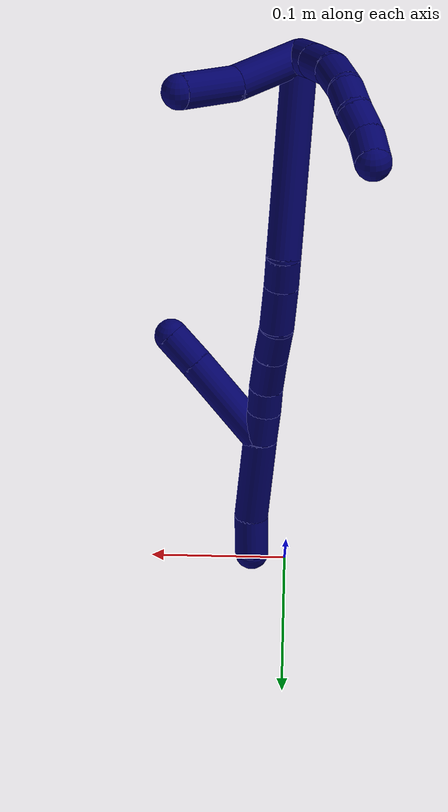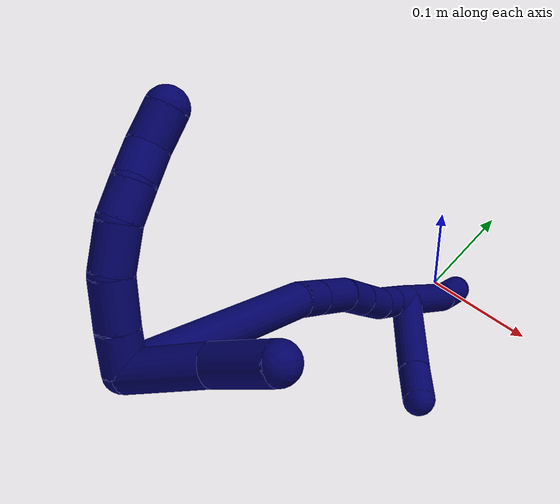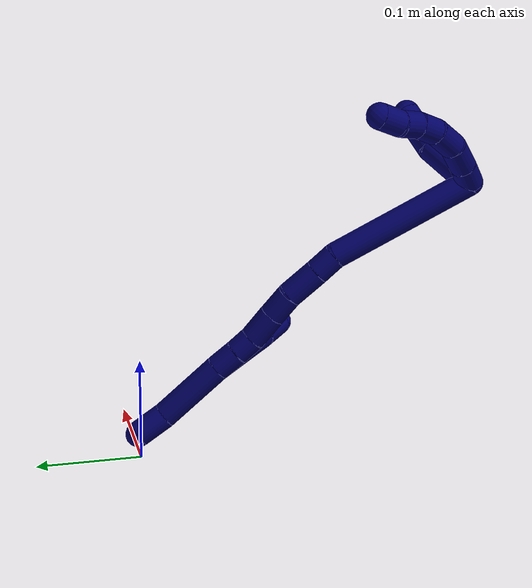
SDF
<sdf version="1.7">
 <world name="default">
  <model name="7">
   <static>0</static>
   <link name="7">
    <collision name="collision-cylinder-e_1_2_8">
     <pose>-0.003696 0.011699 0.003721 -1.26289 -0.292462 0.214598</pose>
     <geometry><cylinder><radius>0.0125</radius><length>0.025642</length></cylinder></geometry>
     <surface>
      <friction><ode><mu>1.16</mu><mu2>1.16</mu2><slip1>0</slip1><slip2>0</slip2></ode></friction>
      <contact><ode><kp>1e+06</kp><kd>1</kd><max_vel>0</max_vel><min_depth>0.001</min_depth></ode></contact>
     </surface>
    </collision>
    <visual name="visual-cylinder-e_1_2_8">
     <pose>-0.003696 0.011699 0.003721 -1.26289 -0.292462 0.214598</pose>
     <geometry><cylinder><radius>0.0125</radius><length>0.025642</length></cylinder></geometry>
     <material><ambient>0.003922 0 0.403922 1</ambient></material>
    </visual>
    <collision name="collision-cylinder-e_2_8_9">
     <pose>-0.01152 0.037367 0.011207 -1.30748 -0.277923 0.21349</pose>
     <geometry><cylinder><radius>0.0125</radius><length>0.030088</length></cylinder></geometry>
     <surface>
      <friction><ode><mu>1.16</mu><mu2>1.16</mu2><slip1>0</slip1><slip2>0</slip2></ode></friction>
      <contact><ode><kp>1e+06</kp><kd>1</kd><max_vel>0</max_vel><min_depth>0.001</min_depth></ode></contact>
     </surface>
    </collision>
    <visual name="visual-cylinder-e_2_8_9">
     <pose>-0.01152 0.037367 0.011207 -1.30748 -0.277923 0.21349</pose>
     <geometry><cylinder><radius>0.0125</radius><length>0.030088</length></cylinder></geometry>
     <material><ambient>0.003922 0 0.403922 1</ambient></material>
    </visual>
    <collision name="collision-cylinder-e_3_9_10">
     <pose>-0.018143 0.065117 0.014857 -1.57911 -0.179102 0.18059</pose>
     <geometry><cylinder><radius>0.0125</radius><length>0.028013</length></cylinder></geometry>
     <surface>
      <friction><ode><mu>1.16</mu><mu2>1.16</mu2><slip1>0</slip1><slip2>0</slip2></ode></friction>
      <contact><ode><kp>1e+06</kp><kd>1</kd><max_vel>0</max_vel><min_depth>0.001</min_depth></ode></contact>
     </surface>
    </collision>
    <visual name="visual-cylinder-e_3_9_10">
     <pose>-0.018143 0.065117 0.014857 -1.57911 -0.179102 0.18059</pose>
     <geometry><cylinder><radius>0.0125</radius><length>0.028013</length></cylinder></geometry>
     <material><ambient>0.003922 0 0.403922 1</ambient></material>
    </visual>
    <collision name="collision-cylinder-e_4_10_11">
     <pose>-0.022131 0.089299 0.011781 -1.84826 -0.137152 0.181454</pose>
     <geometry><cylinder><radius>0.0125</radius><length>0.021832</length></cylinder></geometry>
     <surface>
      <friction><ode><mu>1.16</mu><mu2>1.16</mu2><slip1>0</slip1><slip2>0</slip2></ode></friction>
      <contact><ode><kp>1e+06</kp><kd>1</kd><max_vel>0</max_vel><min_depth>0.001</min_depth></ode></contact>
     </surface>
    </collision>
    <visual name="visual-cylinder-e_4_10_11">
     <pose>-0.022131 0.089299 0.011781 -1.84826 -0.137152 0.181454</pose>
     <geometry><cylinder><radius>0.0125</radius><length>0.021832</length></cylinder></geometry>
     <material><ambient>0.003922 0 0.403922 1</ambient></material>
    </visual>
    <collision name="collision-cylinder-e_5_11_12">
     <pose>-0.026315 0.108654 0.004147 -2.05163 -0.260418 0.425481</pose>
     <geometry><cylinder><radius>0.0125</radius><length>0.020907</length></cylinder></geometry>
     <surface>
      <friction><ode><mu>1.16</mu><mu2>1.16</mu2><slip1>0</slip1><slip2>0</slip2></ode></friction>
      <contact><ode><kp>1e+06</kp><kd>1</kd><max_vel>0</max_vel><min_depth>0.001</min_depth></ode></contact>
     </surface>
    </collision>
    <visual name="visual-cylinder-e_5_11_12">
     <pose>-0.026315 0.108654 0.004147 -2.05163 -0.260418 0.425481</pose>
     <geometry><cylinder><radius>0.0125</radius><length>0.020907</length></cylinder></geometry>
     <material><ambient>0.003922 0 0.403922 1</ambient></material>
    </visual>
    <collision name="collision-cylinder-e_6_12_6">
     <pose>-0.029588 0.128794 -0.004109 -1.88095 -0.049473 0.067796</pose>
     <geometry><cylinder><radius>0.0125</radius><length>0.023517</length></cylinder></geometry>
     <surface>
      <friction><ode><mu>1.16</mu><mu2>1.16</mu2><slip1>0</slip1><slip2>0</slip2></ode></friction>
      <contact><ode><kp>1e+06</kp><kd>1</kd><max_vel>0</max_vel><min_depth>0.001</min_depth></ode></contact>
     </surface>
    </collision>
    <visual name="visual-cylinder-e_6_12_6">
     <pose>-0.029588 0.128794 -0.004109 -1.88095 -0.049473 0.067796</pose>
     <geometry><cylinder><radius>0.0125</radius><length>0.023517</length></cylinder></geometry>
     <material><ambient>0.003922 0 0.403922 1</ambient></material>
    </visual>
    <collision name="collision-cylinder-e_1_2_13">
     <pose>0.023896 0.013173 -0.001452 -1.68058 1.06442 -1.16307</pose>
     <geometry><cylinder><radius>0.0125</radius><length>0.054649</length></cylinder></geometry>
     <surface>
      <friction><ode><mu>1.16</mu><mu2>1.16</mu2><slip1>0</slip1><slip2>0</slip2></ode></friction>
      <contact><ode><kp>1e+06</kp><kd>1</kd><max_vel>0</max_vel><min_depth>0.001</min_depth></ode></contact>
     </surface>
    </collision>
    <visual name="visual-cylinder-e_1_2_13">
     <pose>0.023896 0.013173 -0.001452 -1.68058 1.06442 -1.16307</pose>
     <geometry><cylinder><radius>0.0125</radius><length>0.054649</length></cylinder></geometry>
     <material><ambient>0.003922 0 0.403922 1</ambient></material>
    </visual>
    <collision name="collision-cylinder-e_2_13_5">
     <pose>0.067477 0.036829 0.001188 -1.19861 1.05151 -0.754737</pose>
     <geometry><cylinder><radius>0.0125</radius><length>0.045351</length></cylinder></geometry>
     <surface>
      <friction><ode><mu>1.16</mu><mu2>1.16</mu2><slip1>0</slip1><slip2>0</slip2></ode></friction>
      <contact><ode><kp>1e+06</kp><kd>1</kd><max_vel>0</max_vel><min_depth>0.001</min_depth></ode></contact>
     </surface>
    </collision>
    <visual name="visual-cylinder-e_2_13_5">
     <pose>0.067477 0.036829 0.001188 -1.19861 1.05151 -0.754737</pose>
     <geometry><cylinder><radius>0.0125</radius><length>0.045351</length></cylinder></geometry>
     <material><ambient>0.003922 0 0.403922 1</ambient></material>
    </visual>
    <collision name="collision-cylinder-e_1_2_14">
     <pose>0.009702 0.02042 -0.067414 -2.84747 0.13688 -0.866817</pose>
     <geometry><cylinder><radius>0.0125</radius><length>0.142207</length></cylinder></geometry>
     <surface>
      <friction><ode><mu>1.16</mu><mu2>1.16</mu2><slip1>0</slip1><slip2>0</slip2></ode></friction>
      <contact><ode><kp>1e+06</kp><kd>1</kd><max_vel>0</max_vel><min_depth>0.001</min_depth></ode></contact>
     </surface>
    </collision>
    <visual name="visual-cylinder-e_1_2_14">
     <pose>0.009702 0.02042 -0.067414 -2.84747 0.13688 -0.866817</pose>
     <geometry><cylinder><radius>0.0125</radius><length>0.142207</length></cylinder></geometry>
     <material><ambient>0.003922 0 0.403922 1</ambient></material>
    </visual>
    <collision name="collision-cylinder-e_2_14_15">
     <pose>0.020508 0.041321 -0.146241 -3.09944 0.096322 -2.31695</pose>
     <geometry><cylinder><radius>0.0125</radius><length>0.022955</length></cylinder></geometry>
     <surface>
      <friction><ode><mu>1.16</mu><mu2>1.16</mu2><slip1>0</slip1><slip2>0</slip2></ode></friction>
      <contact><ode><kp>1e+06</kp><kd>1</kd><max_vel>0</max_vel><min_depth>0.001</min_depth></ode></contact>
     </surface>
    </collision>
    <visual name="visual-cylinder-e_2_14_15">
     <pose>0.020508 0.041321 -0.146241 -3.09944 0.096322 -2.31695</pose>
     <geometry><cylinder><radius>0.0125</radius><length>0.022955</length></cylinder></geometry>
     <material><ambient>0.003922 0 0.403922 1</ambient></material>
    </visual>
    <collision name="collision-cylinder-e_3_15_16">
     <pose>0.023801 0.042735 -0.174625 -3.0867 0.128091 -2.33264</pose>
     <geometry><cylinder><radius>0.0125</radius><length>0.034271</length></cylinder></geometry>
     <surface>
      <friction><ode><mu>1.16</mu><mu2>1.16</mu2><slip1>0</slip1><slip2>0</slip2></ode></friction>
      <contact><ode><kp>1e+06</kp><kd>1</kd><max_vel>0</max_vel><min_depth>0.001</min_depth></ode></contact>
     </surface>
    </collision>
    <visual name="visual-cylinder-e_3_15_16">
     <pose>0.023801 0.042735 -0.174625 -3.0867 0.128091 -2.33264</pose>
     <geometry><cylinder><radius>0.0125</radius><length>0.034271</length></cylinder></geometry>
     <material><ambient>0.003922 0 0.403922 1</ambient></material>
    </visual>
    <collision name="collision-cylinder-e_4_16_17">
     <pose>0.028043 0.04181 -0.204269 2.99605 0.158873 1.65864</pose>
     <geometry><cylinder><radius>0.0125</radius><length>0.025947</length></cylinder></geometry>
     <surface>
      <friction><ode><mu>1.16</mu><mu2>1.16</mu2><slip1>0</slip1><slip2>0</slip2></ode></friction>
      <contact><ode><kp>1e+06</kp><kd>1</kd><max_vel>0</max_vel><min_depth>0.001</min_depth></ode></contact>
     </surface>
    </collision>
    <visual name="visual-cylinder-e_4_16_17">
     <pose>0.028043 0.04181 -0.204269 2.99605 0.158873 1.65864</pose>
     <geometry><cylinder><radius>0.0125</radius><length>0.025947</length></cylinder></geometry>
     <material><ambient>0.003922 0 0.403922 1</ambient></material>
    </visual>
    <collision name="collision-cylinder-e_5_17_18">
     <pose>0.032051 0.037782 -0.231781 2.9964 0.129739 1.45812</pose>
     <geometry><cylinder><radius>0.0125</radius><length>0.030243</length></cylinder></geometry>
     <surface>
      <friction><ode><mu>1.16</mu><mu2>1.16</mu2><slip1>0</slip1><slip2>0</slip2></ode></friction>
      <contact><ode><kp>1e+06</kp><kd>1</kd><max_vel>0</max_vel><min_depth>0.001</min_depth></ode></contact>
     </surface>
    </collision>
    <visual name="visual-cylinder-e_5_17_18">
     <pose>0.032051 0.037782 -0.231781 2.9964 0.129739 1.45812</pose>
     <geometry><cylinder><radius>0.0125</radius><length>0.030243</length></cylinder></geometry>
     <material><ambient>0.003922 0 0.403922 1</ambient></material>
    </visual>
    <collision name="collision-cylinder-e_6_18_19">
     <pose>0.035078 0.036029 -0.256689 -3.1003 0.10578 -2.39784</pose>
     <geometry><cylinder><radius>0.0125</radius><length>0.020273</length></cylinder></geometry>
     <surface>
      <friction><ode><mu>1.16</mu><mu2>1.16</mu2><slip1>0</slip1><slip2>0</slip2></ode></friction>
      <contact><ode><kp>1e+06</kp><kd>1</kd><max_vel>0</max_vel><min_depth>0.001</min_depth></ode></contact>
     </surface>
    </collision>
    <visual name="visual-cylinder-e_6_18_19">
     <pose>0.035078 0.036029 -0.256689 -3.1003 0.10578 -2.39784</pose>
     <geometry><cylinder><radius>0.0125</radius><length>0.020273</length></cylinder></geometry>
     <material><ambient>0.003922 0 0.403922 1</ambient></material>
    </visual>
    <collision name="collision-cylinder-e_7_19_1">
     <pose>0.037996 0.037135 -0.278649 -3.08358 0.153957 -2.42202</pose>
     <geometry><cylinder><radius>0.0125</radius><length>0.024104</length></cylinder></geometry>
     <surface>
      <friction><ode><mu>1.16</mu><mu2>1.16</mu2><slip1>0</slip1><slip2>0</slip2></ode></friction>
      <contact><ode><kp>1e+06</kp><kd>1</kd><max_vel>0</max_vel><min_depth>0.001</min_depth></ode></contact>
     </surface>
    </collision>
    <visual name="visual-cylinder-e_7_19_1">
     <pose>0.037996 0.037135 -0.278649 -3.08358 0.153957 -2.42202</pose>
     <geometry><cylinder><radius>0.0125</radius><length>0.024104</length></cylinder></geometry>
     <material><ambient>0.003922 0 0.403922 1</ambient></material>
    </visual>
    <collision name="collision-cylinder-e_1_1_20">
     <pose>0.044286 0.038527 -0.324862 -3.12117 0.128666 -2.82723</pose>
     <geometry><cylinder><radius>0.0125</radius><length>0.069234</length></cylinder></geometry>
     <surface>
      <friction><ode><mu>1.16</mu><mu2>1.16</mu2><slip1>0</slip1><slip2>0</slip2></ode></friction>
      <contact><ode><kp>1e+06</kp><kd>1</kd><max_vel>0</max_vel><min_depth>0.001</min_depth></ode></contact>
     </surface>
    </collision>
    <visual name="visual-cylinder-e_1_1_20">
     <pose>0.044286 0.038527 -0.324862 -3.12117 0.128666 -2.82723</pose>
     <geometry><cylinder><radius>0.0125</radius><length>0.069234</length></cylinder></geometry>
     <material><ambient>0.003922 0 0.403922 1</ambient></material>
    </visual>
    <collision name="collision-cylinder-e_2_20_4">
     <pose>0.049296 0.042334 -0.374242 -2.93815 0.036949 -0.358142</pose>
     <geometry><cylinder><radius>0.0125</radius><length>0.030766</length></cylinder></geometry>
     <surface>
      <friction><ode><mu>1.16</mu><mu2>1.16</mu2><slip1>0</slip1><slip2>0</slip2></ode></friction>
      <contact><ode><kp>1e+06</kp><kd>1</kd><max_vel>0</max_vel><min_depth>0.001</min_depth></ode></contact>
     </surface>
    </collision>
    <visual name="visual-cylinder-e_2_20_4">
     <pose>0.049296 0.042334 -0.374242 -2.93815 0.036949 -0.358142</pose>
     <geometry><cylinder><radius>0.0125</radius><length>0.030766</length></cylinder></geometry>
     <material><ambient>0.003922 0 0.403922 1</ambient></material>
    </visual>
    <collision name="collision-cylinder-e_1_1_21">
     <pose>0.060653 0.01857 -0.268141 0.71011 0.613745 0.233907</pose>
     <geometry><cylinder><radius>0.0125</radius><length>0.072261</length></cylinder></geometry>
     <surface>
      <friction><ode><mu>1.16</mu><mu2>1.16</mu2><slip1>0</slip1><slip2>0</slip2></ode></friction>
      <contact><ode><kp>1e+06</kp><kd>1</kd><max_vel>0</max_vel><min_depth>0.001</min_depth></ode></contact>
     </surface>
    </collision>
    <visual name="visual-cylinder-e_1_1_21">
     <pose>0.060653 0.01857 -0.268141 0.71011 0.613745 0.233907</pose>
     <geometry><cylinder><radius>0.0125</radius><length>0.072261</length></cylinder></geometry>
     <material><ambient>0.003922 0 0.403922 1</ambient></material>
    </visual>
    <collision name="collision-cylinder-e_2_21_3">
     <pose>0.089788 -0.007517 -0.237005 0.663566 0.643867 0.228815</pose>
     <geometry><cylinder><radius>0.0125</radius><length>0.027739</length></cylinder></geometry>
     <surface>
      <friction><ode><mu>1.16</mu><mu2>1.16</mu2><slip1>0</slip1><slip2>0</slip2></ode></friction>
      <contact><ode><kp>1e+06</kp><kd>1</kd><max_vel>0</max_vel><min_depth>0.001</min_depth></ode></contact>
     </surface>
    </collision>
    <visual name="visual-cylinder-e_2_21_3">
     <pose>0.089788 -0.007517 -0.237005 0.663566 0.643867 0.228815</pose>
     <geometry><cylinder><radius>0.0125</radius><length>0.027739</length></cylinder></geometry>
     <material><ambient>0.003922 0 0.403922 1</ambient></material>
    </visual>
    <collision name="collision-sphere-3">
     <pose>0.098113 -0.014349 -0.228267 0 -0 0</pose>
     <geometry><sphere><radius>0.0125</radius></sphere></geometry>
     <surface>
      <friction><ode><mu>1.16</mu><mu2>1.16</mu2><slip1>0</slip1><slip2>0</slip2></ode></friction>
      <contact><ode><kp>1e+06</kp><kd>1</kd><max_vel>0</max_vel><min_depth>0.001</min_depth></ode></contact>
     </surface>
    </collision>
    <visual name="visual-sphere-3">
     <pose>0.098113 -0.014349 -0.228267 0 -0 0</pose>
     <geometry><sphere><radius>0.0125</radius></sphere></geometry>
     <material><ambient>0.003922 0 0.403922 1</ambient></material>
    </visual>
    <collision name="collision-sphere-21">
     <pose>0.081462 -0.000685 -0.245744 0 -0 0</pose>
     <geometry><sphere><radius>0.0125</radius></sphere></geometry>
     <surface>
      <friction><ode><mu>1.16</mu><mu2>1.16</mu2><slip1>0</slip1><slip2>0</slip2></ode></friction>
      <contact><ode><kp>1e+06</kp><kd>1</kd><max_vel>0</max_vel><min_depth>0.001</min_depth></ode></contact>
     </surface>
    </collision>
    <visual name="visual-sphere-21">
     <pose>0.081462 -0.000685 -0.245744 0 -0 0</pose>
     <geometry><sphere><radius>0.0125</radius></sphere></geometry>
     <material><ambient>0.003922 0 0.403922 1</ambient></material>
    </visual>
    <collision name="collision-sphere-4">
     <pose>0.049865 0.04544 -0.389297 0 -0 0</pose>
     <geometry><sphere><radius>0.0125</radius></sphere></geometry>
     <surface>
      <friction><ode><mu>1.16</mu><mu2>1.16</mu2><slip1>0</slip1><slip2>0</slip2></ode></friction>
      <contact><ode><kp>1e+06</kp><kd>1</kd><max_vel>0</max_vel><min_depth>0.001</min_depth></ode></contact>
     </surface>
    </collision>
    <visual name="visual-sphere-4">
     <pose>0.049865 0.04544 -0.389297 0 -0 0</pose>
     <geometry><sphere><radius>0.0125</radius></sphere></geometry>
     <material><ambient>0.003922 0 0.403922 1</ambient></material>
    </visual>
    <collision name="collision-sphere-20">
     <pose>0.048728 0.039228 -0.359186 0 -0 0</pose>
     <geometry><sphere><radius>0.0125</radius></sphere></geometry>
     <surface>
      <friction><ode><mu>1.16</mu><mu2>1.16</mu2><slip1>0</slip1><slip2>0</slip2></ode></friction>
      <contact><ode><kp>1e+06</kp><kd>1</kd><max_vel>0</max_vel><min_depth>0.001</min_depth></ode></contact>
     </surface>
    </collision>
    <visual name="visual-sphere-20">
     <pose>0.048728 0.039228 -0.359186 0 -0 0</pose>
     <geometry><sphere><radius>0.0125</radius></sphere></geometry>
     <material><ambient>0.003922 0 0.403922 1</ambient></material>
    </visual>
    <collision name="collision-sphere-12">
     <pose>-0.029007 0.11761 -0.000525 0 -0 0</pose>
     <geometry><sphere><radius>0.0125</radius></sphere></geometry>
     <surface>
      <friction><ode><mu>1.16</mu><mu2>1.16</mu2><slip1>0</slip1><slip2>0</slip2></ode></friction>
      <contact><ode><kp>1e+06</kp><kd>1</kd><max_vel>0</max_vel><min_depth>0.001</min_depth></ode></contact>
     </surface>
    </collision>
    <visual name="visual-sphere-12">
     <pose>-0.029007 0.11761 -0.000525 0 -0 0</pose>
     <geometry><sphere><radius>0.0125</radius></sphere></geometry>
     <material><ambient>0.003922 0 0.403922 1</ambient></material>
    </visual>
    <collision name="collision-sphere-11">
     <pose>-0.023623 0.099699 0.008819 0 -0 0</pose>
     <geometry><sphere><radius>0.0125</radius></sphere></geometry>
     <surface>
      <friction><ode><mu>1.16</mu><mu2>1.16</mu2><slip1>0</slip1><slip2>0</slip2></ode></friction>
      <contact><ode><kp>1e+06</kp><kd>1</kd><max_vel>0</max_vel><min_depth>0.001</min_depth></ode></contact>
     </surface>
    </collision>
    <visual name="visual-sphere-11">
     <pose>-0.023623 0.099699 0.008819 0 -0 0</pose>
     <geometry><sphere><radius>0.0125</radius></sphere></geometry>
     <material><ambient>0.003922 0 0.403922 1</ambient></material>
    </visual>
    <collision name="collision-sphere-10">
     <pose>-0.020638 0.078899 0.014743 0 -0 0</pose>
     <geometry><sphere><radius>0.0125</radius></sphere></geometry>
     <surface>
      <friction><ode><mu>1.16</mu><mu2>1.16</mu2><slip1>0</slip1><slip2>0</slip2></ode></friction>
      <contact><ode><kp>1e+06</kp><kd>1</kd><max_vel>0</max_vel><min_depth>0.001</min_depth></ode></contact>
     </surface>
    </collision>
    <visual name="visual-sphere-10">
     <pose>-0.020638 0.078899 0.014743 0 -0 0</pose>
     <geometry><sphere><radius>0.0125</radius></sphere></geometry>
     <material><ambient>0.003922 0 0.403922 1</ambient></material>
    </visual>
    <collision name="collision-sphere-9">
     <pose>-0.015648 0.051335 0.014972 0 -0 0</pose>
     <geometry><sphere><radius>0.0125</radius></sphere></geometry>
     <surface>
      <friction><ode><mu>1.16</mu><mu2>1.16</mu2><slip1>0</slip1><slip2>0</slip2></ode></friction>
      <contact><ode><kp>1e+06</kp><kd>1</kd><max_vel>0</max_vel><min_depth>0.001</min_depth></ode></contact>
     </surface>
    </collision>
    <visual name="visual-sphere-9">
     <pose>-0.015648 0.051335 0.014972 0 -0 0</pose>
     <geometry><sphere><radius>0.0125</radius></sphere></geometry>
     <material><ambient>0.003922 0 0.403922 1</ambient></material>
    </visual>
    <collision name="collision-sphere-2">
     <geometry><sphere><radius>0.0125</radius></sphere></geometry>
     <surface>
      <friction><ode><mu>1.16</mu><mu2>1.16</mu2><slip1>0</slip1><slip2>0</slip2></ode></friction>
      <contact><ode><kp>1e+06</kp><kd>1</kd><max_vel>0</max_vel><min_depth>0.001</min_depth></ode></contact>
     </surface>
    </collision>
    <visual name="visual-sphere-2">
     <geometry><sphere><radius>0.0125</radius></sphere></geometry>
     <material><ambient>0.003922 0 0.403922 1</ambient></material>
    </visual>
    <collision name="collision-sphere-19">
     <pose>0.036148 0.036445 -0.26676 0 -0 0</pose>
     <geometry><sphere><radius>0.0125</radius></sphere></geometry>
     <surface>
      <friction><ode><mu>1.16</mu><mu2>1.16</mu2><slip1>0</slip1><slip2>0</slip2></ode></friction>
      <contact><ode><kp>1e+06</kp><kd>1</kd><max_vel>0</max_vel><min_depth>0.001</min_depth></ode></contact>
     </surface>
    </collision>
    <visual name="visual-sphere-19">
     <pose>0.036148 0.036445 -0.26676 0 -0 0</pose>
     <geometry><sphere><radius>0.0125</radius></sphere></geometry>
     <material><ambient>0.003922 0 0.403922 1</ambient></material>
    </visual>
    <collision name="collision-sphere-8">
     <pose>-0.007393 0.023398 0.007441 0 -0 0</pose>
     <geometry><sphere><radius>0.0125</radius></sphere></geometry>
     <surface>
      <friction><ode><mu>1.16</mu><mu2>1.16</mu2><slip1>0</slip1><slip2>0</slip2></ode></friction>
      <contact><ode><kp>1e+06</kp><kd>1</kd><max_vel>0</max_vel><min_depth>0.001</min_depth></ode></contact>
     </surface>
    </collision>
    <visual name="visual-sphere-8">
     <pose>-0.007393 0.023398 0.007441 0 -0 0</pose>
     <geometry><sphere><radius>0.0125</radius></sphere></geometry>
     <material><ambient>0.003922 0 0.403922 1</ambient></material>
    </visual>
    <collision name="collision-sphere-6">
     <pose>-0.03017 0.139978 -0.007694 0 -0 0</pose>
     <geometry><sphere><radius>0.0125</radius></sphere></geometry>
     <surface>
      <friction><ode><mu>1.16</mu><mu2>1.16</mu2><slip1>0</slip1><slip2>0</slip2></ode></friction>
      <contact><ode><kp>1e+06</kp><kd>1</kd><max_vel>0</max_vel><min_depth>0.001</min_depth></ode></contact>
     </surface>
    </collision>
    <visual name="visual-sphere-6">
     <pose>-0.03017 0.139978 -0.007694 0 -0 0</pose>
     <geometry><sphere><radius>0.0125</radius></sphere></geometry>
     <material><ambient>0.003922 0 0.403922 1</ambient></material>
    </visual>
    <collision name="collision-sphere-13">
     <pose>0.047791 0.026346 -0.002904 0 -0 0</pose>
     <geometry><sphere><radius>0.0125</radius></sphere></geometry>
     <surface>
      <friction><ode><mu>1.16</mu><mu2>1.16</mu2><slip1>0</slip1><slip2>0</slip2></ode></friction>
      <contact><ode><kp>1e+06</kp><kd>1</kd><max_vel>0</max_vel><min_depth>0.001</min_depth></ode></contact>
     </surface>
    </collision>
    <visual name="visual-sphere-13">
     <pose>0.047791 0.026346 -0.002904 0 -0 0</pose>
     <geometry><sphere><radius>0.0125</radius></sphere></geometry>
     <material><ambient>0.003922 0 0.403922 1</ambient></material>
    </visual>
    <collision name="collision-sphere-5">
     <pose>0.087163 0.047311 0.00528 0 -0 0</pose>
     <geometry><sphere><radius>0.0125</radius></sphere></geometry>
     <surface>
      <friction><ode><mu>1.16</mu><mu2>1.16</mu2><slip1>0</slip1><slip2>0</slip2></ode></friction>
      <contact><ode><kp>1e+06</kp><kd>1</kd><max_vel>0</max_vel><min_depth>0.001</min_depth></ode></contact>
     </surface>
    </collision>
    <visual name="visual-sphere-5">
     <pose>0.087163 0.047311 0.00528 0 -0 0</pose>
     <geometry><sphere><radius>0.0125</radius></sphere></geometry>
     <material><ambient>0.003922 0 0.403922 1</ambient></material>
    </visual>
    <collision name="collision-sphere-14">
     <pose>0.019405 0.04084 -0.134827 0 -0 0</pose>
     <geometry><sphere><radius>0.0125</radius></sphere></geometry>
     <surface>
      <friction><ode><mu>1.16</mu><mu2>1.16</mu2><slip1>0</slip1><slip2>0</slip2></ode></friction>
      <contact><ode><kp>1e+06</kp><kd>1</kd><max_vel>0</max_vel><min_depth>0.001</min_depth></ode></contact>
     </surface>
    </collision>
    <visual name="visual-sphere-14">
     <pose>0.019405 0.04084 -0.134827 0 -0 0</pose>
     <geometry><sphere><radius>0.0125</radius></sphere></geometry>
     <material><ambient>0.003922 0 0.403922 1</ambient></material>
    </visual>
    <collision name="collision-sphere-15">
     <pose>0.021612 0.041803 -0.157655 0 -0 0</pose>
     <geometry><sphere><radius>0.0125</radius></sphere></geometry>
     <surface>
      <friction><ode><mu>1.16</mu><mu2>1.16</mu2><slip1>0</slip1><slip2>0</slip2></ode></friction>
      <contact><ode><kp>1e+06</kp><kd>1</kd><max_vel>0</max_vel><min_depth>0.001</min_depth></ode></contact>
     </surface>
    </collision>
    <visual name="visual-sphere-15">
     <pose>0.021612 0.041803 -0.157655 0 -0 0</pose>
     <geometry><sphere><radius>0.0125</radius></sphere></geometry>
     <material><ambient>0.003922 0 0.403922 1</ambient></material>
    </visual>
    <collision name="collision-sphere-16">
     <pose>0.02599 0.043668 -0.191595 0 -0 0</pose>
     <geometry><sphere><radius>0.0125</radius></sphere></geometry>
     <surface>
      <friction><ode><mu>1.16</mu><mu2>1.16</mu2><slip1>0</slip1><slip2>0</slip2></ode></friction>
      <contact><ode><kp>1e+06</kp><kd>1</kd><max_vel>0</max_vel><min_depth>0.001</min_depth></ode></contact>
     </surface>
    </collision>
    <visual name="visual-sphere-16">
     <pose>0.02599 0.043668 -0.191595 0 -0 0</pose>
     <geometry><sphere><radius>0.0125</radius></sphere></geometry>
     <material><ambient>0.003922 0 0.403922 1</ambient></material>
    </visual>
    <collision name="collision-sphere-17">
     <pose>0.030095 0.039952 -0.216944 0 -0 0</pose>
     <geometry><sphere><radius>0.0125</radius></sphere></geometry>
     <surface>
      <friction><ode><mu>1.16</mu><mu2>1.16</mu2><slip1>0</slip1><slip2>0</slip2></ode></friction>
      <contact><ode><kp>1e+06</kp><kd>1</kd><max_vel>0</max_vel><min_depth>0.001</min_depth></ode></contact>
     </surface>
    </collision>
    <visual name="visual-sphere-17">
     <pose>0.030095 0.039952 -0.216944 0 -0 0</pose>
     <geometry><sphere><radius>0.0125</radius></sphere></geometry>
     <material><ambient>0.003922 0 0.403922 1</ambient></material>
    </visual>
    <collision name="collision-sphere-18">
     <pose>0.034008 0.035613 -0.246618 0 -0 0</pose>
     <geometry><sphere><radius>0.0125</radius></sphere></geometry>
     <surface>
      <friction><ode><mu>1.16</mu><mu2>1.16</mu2><slip1>0</slip1><slip2>0</slip2></ode></friction>
      <contact><ode><kp>1e+06</kp><kd>1</kd><max_vel>0</max_vel><min_depth>0.001</min_depth></ode></contact>
     </surface>
    </collision>
    <visual name="visual-sphere-18">
     <pose>0.034008 0.035613 -0.246618 0 -0 0</pose>
     <geometry><sphere><radius>0.0125</radius></sphere></geometry>
     <material><ambient>0.003922 0 0.403922 1</ambient></material>
    </visual>
    <collision name="collision-sphere-1">
     <pose>0.039844 0.037826 -0.290539 0 -0 0</pose>
     <geometry><sphere><radius>0.0125</radius></sphere></geometry>
     <surface>
      <friction><ode><mu>1.16</mu><mu2>1.16</mu2><slip1>0</slip1><slip2>0</slip2></ode></friction>
      <contact><ode><kp>1e+06</kp><kd>1</kd><max_vel>0</max_vel><min_depth>0.001</min_depth></ode></contact>
     </surface>
    </collision>
    <visual name="visual-sphere-1">
     <pose>0.039844 0.037826 -0.290539 0 -0 0</pose>
     <geometry><sphere><radius>0.0125</radius></sphere></geometry>
     <material><ambient>0.003922 0 0.403922 1</ambient></material>
    </visual>
    <inertial>
     <pose>0.025511 0.036216 -0.136059 0 -0 0</pose>
     <mass>0.75</mass>
     <inertia>
      <ixx>-1e-05</ixx>
      <ixy>0</ixy>
      <ixz>0</ixz>
      <iyy>-0.000244</iyy>
      <iyz>0</iyz>
      <izz>-0.000183</izz>
     </inertia>
    </inertial>
   </link>
   <pose>-0.001272 -0.312748 0.253802 0.778085 -0.054454 0.120326</pose>
  </model>
 </world>
</sdf>
